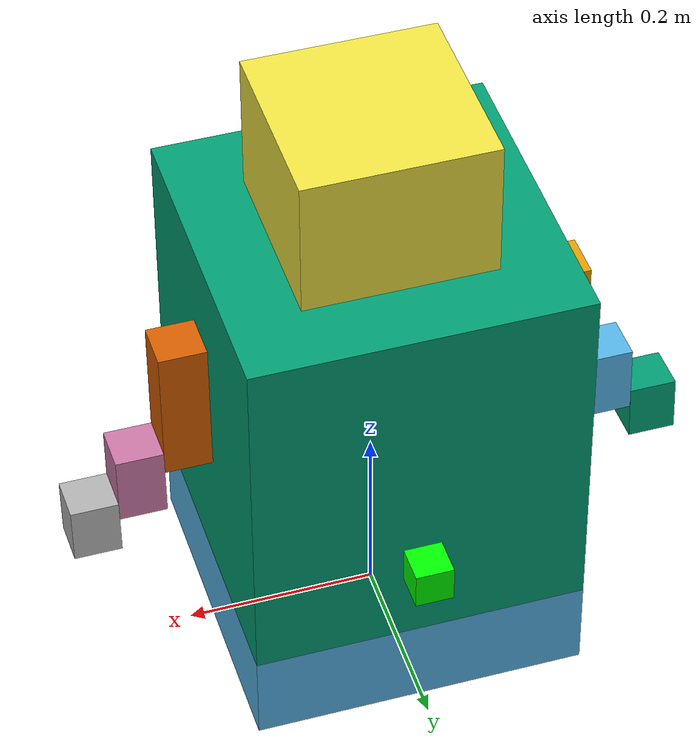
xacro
<?xml version="1.0"?>
<robot name="NEma" xmlns:xacro="http://www.ros.org/wiki/xacro">
    <xacro:include filename="$(find nema_description)/urdf/body.xacro" />
    <xacro:include filename="$(find nema_description)/urdf/arm.xacro" />
    <xacro:include filename="$(find nema_description)/urdf/joints.xacro" />
    <xacro:include filename="$(find nema_description)/urdf/camera.xacro" />
    <xacro:include filename="$(find nema_description)/urdf/gazebo.xacro" />
    <xacro:include filename="$(find nema_description)/urdf/robot_controllers.xacro" />
</robot>

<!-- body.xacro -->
<robot xmlns:xacro="http://www.ros.org/wiki/xacro">

    <link name="world"></link>

    <link name="base_link">
        <visual>
            <origin xyz="0.0 0.0 0.050" rpy="0.0 0.0 0.0"/>
            <geometry>
                <box size="0.350 0.350 0.100"/>
            </geometry>
        </visual>
        <collision>
            <origin xyz="0.0 0.0 0.050" rpy="0.0 0.0 0.0"/>
            <geometry>
                <box size="0.350 0.350 0.100"/>
            </geometry>
        </collision>
        <inertial>
            <origin xyz="0 0 0.050" rpy="0.0 0.0 0.0"/>
            <mass value="0.1"/>
            <inertia ixx="0.1" ixy="0.0" ixz="0.0" iyy="0.1" iyz="0.0" izz="0.1"/>
        </inertial>
    </link>

    <link name="body_link">
        <visual>
            <origin xyz="0.0 0.0 0.200" rpy="0.0 0.0 0.0"/>
            <geometry>
                <box size="0.350 0.350 0.400"/>
            </geometry>
        </visual>
        <collision>
            <origin xyz="0.0 0.0 0.200" rpy="0.0 0.0 0.0"/>
            <geometry>
                <box size="0.350 0.350 0.400"/>
            </geometry>
        </collision>
        <inertial>
            <origin xyz="0 0 0.200" rpy="0.0 0.0 0.0"/>
            <mass value="0.4"/>
            <inertia ixx="0.4" ixy="0.0" ixz="0.0" iyy="0.4" iyz="0.0" izz="0.4"/>
        </inertial>
    </link>

    <link name="face_link">
        <visual>
            <origin xyz="0.0 0.0 0.075" rpy="0.0 0.0 0.0"/>
            <geometry>
                <box size="0.200 0.200 0.150"/>
            </geometry>
        </visual>
        <collision>
            <origin xyz="0.0 0.0 0.075" rpy="0.0 0.0 0.0"/>
            <geometry>
                <box size="0.200 0.200 0.150"/>
            </geometry>
        </collision>
        <inertial>
            <origin xyz="0 0 0.075" rpy="0.0 0.0 0.0"/>
            <mass value="0.08"/>
            <inertia ixx="0.08" ixy="0.0" ixz="0.0" iyy="0.08" iyz="0.0" izz="0.08"/>
        </inertial>
    </link>

    <link name="face_intermediate_link">
        <inertial>
            <origin xyz="0 0 0" rpy="0 0 0"/>
            <mass value="0.0001"/>
            <inertia ixx="0.0001" ixy="0.0" ixz="0.0" iyy="0.0001" iyz="0.0" izz="0.0001"/>
        </inertial>
    </link>

</robot>

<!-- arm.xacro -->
<robot xmlns:xacro="http://www.ros.org/wiki/xacro">

    <link name="right_arm1">
        <visual>
            <origin xyz="0.0 0.0 -0.075" rpy="0.0 0.0 0.0"/>
            <geometry>
                <box size="0.050 0.050 0.150"/>
            </geometry>
        </visual>
        <collision>
            <origin xyz="0.0 0.0 -0.075" rpy="0.0 0.0 0.0"/>
            <geometry>
                <box size="0.050 0.050 0.150"/>
            </geometry>
        </collision>
        <inertial>
            <origin xyz="0.0 0.0 -0.075" rpy="0.0 0.0 0.0"/>
            <mass value="0.06"/>
            <inertia ixx="0.06" ixy="0.0" ixz="0.0" iyy="0.06" iyz="0.0" izz="0.06"/>
        </inertial>
    </link>

    <link name="right_arm2">
        <visual>
            <origin xyz="0.0 0.0 -0.0375" rpy="0.0 0.0 0.0"/>
            <geometry>
                <box size="0.050 0.050 0.075"/>
            </geometry>
        </visual>
        <collision>
            <origin xyz="0.0 0.0 -0.0375" rpy="0.0 0.0 0.0"/>
            <geometry>
                <box size="0.050 0.050 0.075"/>
            </geometry>
        </collision>
        <inertial>
            <origin xyz="0.0 0.0 -0.0375" rpy="0.0 0.0 0.0"/>
            <mass value="0.03"/>
            <inertia ixx="0.03" ixy="0.0" ixz="0.0" iyy="0.03" iyz="0.0" izz="0.03"/>
        </inertial>
    </link>
    <link name="right_arm3">
        <visual>
            <origin xyz="0.0 0.00 -0.03" rpy="0.0 0.0 0.0"/>
            <geometry>
                <box size="0.050 0.050 0.060"/>
            </geometry>
        </visual>
        <collision>
            <origin xyz="0.0 0.0 -0.03" rpy="0.0 0.0 0.0"/>
            <geometry>
                <box size="0.050 0.050 0.060"/>
            </geometry>
        </collision>
        <inertial>
            <origin xyz="0.0 0.0 -0.030" rpy="0.0 0.0 0.0"/>
            <mass value="0.01"/>
            <inertia ixx="0.01" ixy="0.0" ixz="0.0" iyy="0.01" iyz="0.0" izz="0.01"/>
        </inertial>
    </link>

    <link name="left_arm1">
        <visual>
            <origin xyz="0.0 0.0 -0.075" rpy="0.0 0.0 0.0"/>
            <geometry>
                <box size="0.050 0.050 0.150"/>
            </geometry>
        </visual>
        <collision>
            <origin xyz="0.0 0.0 -0.075" rpy="0.0 0.0 0.0"/>
            <geometry>
                <box size="0.050 0.050 0.150"/>
            </geometry>
        </collision>
        <inertial>
            <origin xyz="0.0 0.0 -0.075" rpy="0.0 0.0 0.0"/>
            <mass value="0.06"/>
            <inertia ixx="0.06" ixy="0.0" ixz="0.0" iyy="0.06" iyz="0.0" izz="0.06"/>
        </inertial>
    </link>

    <link name="left_arm2">
        <visual>
            <origin xyz="0.0 0.0 -0.0375" rpy="0.0 0.0 0.0"/>
            <geometry>
                <box size="0.050 0.050 0.075"/>
            </geometry>
        </visual>
        <collision>
            <origin xyz="0.0 0.0 -0.0375" rpy="0.0 0.0 0.0"/>
            <geometry>
                <box size="0.050 0.050 0.075"/>
            </geometry>
        </collision>
        <inertial>
            <origin xyz="0.0 0.0 -0.0375" rpy="0.0 0.0 0.0"/>
            <mass value="0.03"/>
            <inertia ixx="0.03" ixy="0.0" ixz="0.0" iyy="0.03" iyz="0.0" izz="0.03"/>
        </inertial>
    </link>
    <link name="left_arm3">
        <visual>
            <origin xyz="0.0 0.00 -0.03" rpy="0.0 0.0 0.0"/>
            <geometry>
                <box size="0.050 0.050 0.060"/>
            </geometry>
        </visual>
        <collision>
            <origin xyz="0.0 0.0 -0.03" rpy="0.0 0.0 0.0"/>
            <geometry>
                <box size="0.050 0.050 0.060"/>
            </geometry>
        </collision>
        <inertial>
            <origin xyz="0.0 0.0 -0.030" rpy="0.0 0.0 0.0"/>
            <mass value="0.01"/>
            <inertia ixx="0.01" ixy="0.0" ixz="0.0" iyy="0.01" iyz="0.0" izz="0.01"/>
        </inertial>
    </link>
</robot>

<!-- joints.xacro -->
<robot xmlns:xacro="http://www.ros.org/wiki/xacro">

    <joint name="fixed" type="fixed">
        <origin xyz="0.0 0.0 0.0" rpy="0.0 0.0 0.0"/>
        <parent link="world"/>
        <child link="base_link"/>
    </joint>

    <joint name="body_joint" type="revolute">
        <safety_controller k_position="100.0" k_velocity="40.0" soft_lower_limit="-0.8" soft_upper_limit="0.8"/>
        <origin rpy="0 0 0" xyz="0 0 0.100"/>
        <parent link="base_link"/>
        <child link="body_link"/>
        <axis xyz="0 0 1"/>
        <limit effort="5" lower="-0.85" upper="0.85" velocity="0.3"/>
    </joint>

    <joint name="face_joint_z" type="revolute">
        <safety_controller k_position="100.0" k_velocity="40.0" soft_lower_limit="-0.8" soft_upper_limit="0.8"/>
        <origin rpy="0 0 0" xyz="0 0 0.400"/>
        <parent link="body_link"/>
        <child link="face_intermediate_link"/>
        <axis xyz="0 0 1"/>
        <limit effort="30.0" lower="-0.85" upper="0.85" velocity="10.0"/>
    </joint>

    <joint name="face_joint_x" type="revolute">
        <safety_controller k_position="100.0" k_velocity="40.0" soft_lower_limit="-0.8" soft_upper_limit="0.8"/>
        <origin rpy="0 0 0" xyz="0 0 0.0"/>
        <parent link="face_intermediate_link"/>
        <child link="face_link"/>
        <axis xyz="1 0 0"/>
        <limit effort="5" lower="-0.85" upper="0.85" velocity="0.25"/>
    </joint>

    <joint name="right_joint1" type="revolute">
        <safety_controller k_position="100.0" k_velocity="40.0" soft_lower_limit="0" soft_upper_limit="0.8"/>
        <origin rpy="0.02 0 0" xyz="0.200 0 0.300"/>
        <parent link="body_link"/>
        <child link="right_arm1"/>
        <axis xyz="1 0 0"/>
        <limit effort="30.0" lower="-0.05" upper="0.85" velocity="10.0"/>
    </joint>
    <joint name="right_joint2" type="revolute">
        <safety_controller k_position="100.0" k_velocity="40.0" soft_lower_limit="0" soft_upper_limit="0.4"/>
        <origin rpy="0.02 0 0" xyz="0.050 0 -0.125"/>
        <parent link="right_arm1"/>
        <child link="right_arm2"/>
        <axis xyz="1 0 0"/>
        <limit effort="30.0" lower="-0.05" upper="0.45" velocity="10.0"/>
    </joint>
    <joint name="right_joint3" type="revolute">
        <safety_controller k_position="100.0" k_velocity="40.0" soft_lower_limit="0" soft_upper_limit="0.2"/>
        <origin rpy="0.02 0 0" xyz="0.050 0 -0.055"/>
        <parent link="right_arm2"/>
        <child link="right_arm3"/>
        <axis xyz="1 0 0"/>
        <limit effort="30.0" lower="-0.05" upper="0.25" velocity="10.0"/>
    </joint>

    <joint name="left_joint1" type="revolute">
        <safety_controller k_position="100.0" k_velocity="40.0" soft_lower_limit="0" soft_upper_limit="0.8"/>
        <origin rpy="0.02 0 0" xyz="-0.200 0 0.300"/>
        <parent link="body_link"/>
        <child link="left_arm1"/>
        <axis xyz="1 0 0"/>
        <limit effort="30.0" lower="-0.05" upper="0.85" velocity="10.0"/>
    </joint>
    <joint name="left_joint2" type="revolute">
        <safety_controller k_position="100.0" k_velocity="40.0" soft_lower_limit="0" soft_upper_limit="0.4"/>
        <origin rpy="0.02 0 0" xyz="-0.050 0 -0.125"/>
        <parent link="left_arm1"/>
        <child link="left_arm2"/>
        <axis xyz="1 0 0"/>
        <limit effort="30.0" lower="-0.05" upper="0.45" velocity="10.0"/>
    </joint>
    <joint name="left_joint3" type="revolute">
        <safety_controller k_position="100.0" k_velocity="40.0" soft_lower_limit="0" soft_upper_limit="0.2"/>
        <origin rpy="0.02 0 0" xyz="-0.050 0 -0.055"/>
        <parent link="left_arm2"/>
        <child link="left_arm3"/>
        <axis xyz="1 0 0"/>
        <limit effort="30.0" lower="-0.05" upper="0.25" velocity="10.0"/>
    </joint>

</robot>

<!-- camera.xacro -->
<robot xmlns:xacro="http://www.ros.org/wiki/xacro">

    <joint name="camera_mount_joint" type="fixed">
        <parent link="body_link"/>
        <child link="camera_link"/>
        <origin xyz="0.0 0.195 0.100" rpy="0 0 0"/>
    </joint>

    <link name="camera_link">
        <inertial>
        <mass value="0.1"/>
        <origin xyz="0 0 0"/>
        <inertia ixx="0.001" iyy="0.001" izz="0.001"
                ixy="0" ixz="0" iyz="0"/>
        </inertial>

        <visual>
        <origin xyz="0 0 0" rpy="0 0 0"/>
        <geometry>
            <box size="0.04 0.04 0.04"/>
        </geometry>
        <material name="green">
            <color rgba= "0 1 0 1"/>
        </material>
        </visual>

        <collision>
        <geometry>
            <box size="0.04 0.04 0.04"/>
        </geometry>
        </collision>
    </link>

    <link name="camera_optical_link"/>

    <joint name="camera_optical_joint" type="fixed">
        <parent link="camera_link"/>
        <child link="camera_optical_link"/>
        <origin xyz="0 0 0" rpy="0 0 0"/>
    </joint>

    <gazebo reference="camera_link">
        <sensor type="camera" name="camera">
            <pose>0 0 0 0 0 0</pose>
            <update_rate>30</update_rate>

            <camera>
                <horizontal_fov>1.047</horizontal_fov>
                <image>
                <width>320</width>
                <height>280</height>
                <format>R8G8B8</format>
                </image>
                <clip>
                <near>0.01</near>
                <far>20.0</far>
                </clip>
            </camera>

            <plugin name="camera_controller" filename="libgazebo_ros_camera.so">
                <camera_name>camera</camera_name>
                <frame_name>camera_optical_link</frame_name>
                <topic_name>image_raw</topic_name>
                <camera_info_topic_name>camera_info</camera_info_topic_name>
                <publish_camera_info>true</publish_camera_info>
                <min_depth>0.1</min_depth>
                <max_depth>100.0</max_depth>
            </plugin>
        </sensor>
    </gazebo>

</robot>
